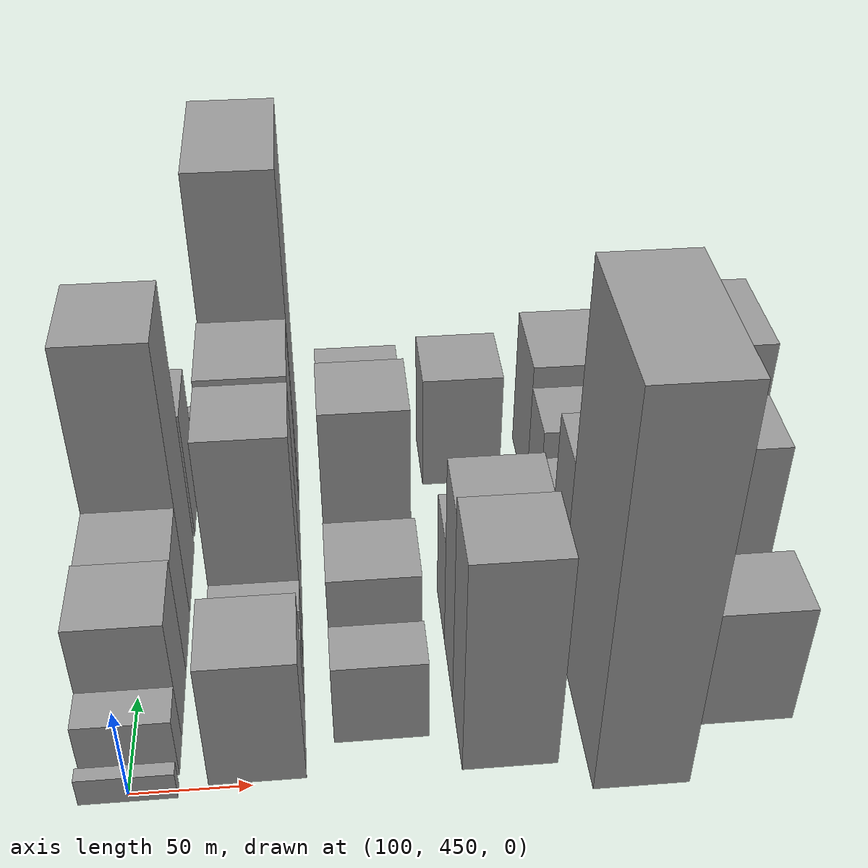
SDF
<sdf version="1.6">
 <world name="default">
  <model name="building_42">
   <static>1</static>
   <pose>100.0000 449.6973 0 0.000000 0.000000 0.000000</pose>
   <link name="link">
    <pose>0 0 7.50 0 0 0</pose>
    <collision name="collision"><geometry><box><size>40.0000 6.3976 15.0000</size></box></geometry></collision>
    <visual name="visual">
     <cast_shadows>0</cast_shadows>
     <geometry><box><size>40.0000 6.3976 15.0000</size></box></geometry>
     <material>
      <script>
       <uri>model://grey_wall/materials/scripts</uri>
       <uri>model://grey_wall/materials/textures</uri>
       <name>vrc/grey_wall</name>
      </script>
     </material>
    </visual>
   </link>
  </model>
  <model name="building_43">
   <static>1</static>
   <pose>100.0000 467.1115 0 0.000000 0.000000 0.000000</pose>
   <link name="link">
    <pose>0 0 16.50 0 0 0</pose>
    <collision name="collision"><geometry><box><size>40.0000 18.4309 33.0000</size></box></geometry></collision>
    <visual name="visual">
     <cast_shadows>0</cast_shadows>
     <geometry><box><size>40.0000 18.4309 33.0000</size></box></geometry>
     <material>
      <script>
       <uri>model://grey_wall/materials/scripts</uri>
       <uri>model://grey_wall/materials/textures</uri>
       <name>vrc/grey_wall</name>
      </script>
     </material>
    </visual>
   </link>
  </model>
  <model name="building_44">
   <static>1</static>
   <pose>100.0000 494.6663 0 0.000000 0.000000 0.000000</pose>
   <link name="link">
    <pose>0 0 34.50 0 0 0</pose>
    <collision name="collision"><geometry><box><size>40.0000 36.6787 69.0000</size></box></geometry></collision>
    <visual name="visual">
     <cast_shadows>0</cast_shadows>
     <geometry><box><size>40.0000 36.6787 69.0000</size></box></geometry>
     <material>
      <script>
       <uri>model://grey_wall/materials/scripts</uri>
       <uri>model://grey_wall/materials/textures</uri>
       <name>vrc/grey_wall</name>
      </script>
     </material>
    </visual>
   </link>
  </model>
  <model name="building_45">
   <static>1</static>
   <pose>100.0000 530.7949 0 0.000000 0.000000 0.000000</pose>
   <link name="link">
    <pose>0 0 33.00 0 0 0</pose>
    <collision name="collision"><geometry><box><size>40.0000 35.5785 66.0000</size></box></geometry></collision>
    <visual name="visual">
     <cast_shadows>0</cast_shadows>
     <geometry><box><size>40.0000 35.5785 66.0000</size></box></geometry>
     <material>
      <script>
       <uri>model://grey_wall/materials/scripts</uri>
       <uri>model://grey_wall/materials/textures</uri>
       <name>vrc/grey_wall</name>
      </script>
     </material>
    </visual>
   </link>
  </model>
  <model name="building_46">
   <static>1</static>
   <pose>100.0000 571.7592 0 0.000000 0.000000 0.000000</pose>
   <link name="link">
    <pose>0 0 76.50 0 0 0</pose>
    <collision name="collision"><geometry><box><size>40.0000 46.3501 153.0000</size></box></geometry></collision>
    <visual name="visual">
     <cast_shadows>0</cast_shadows>
     <geometry><box><size>40.0000 46.3501 153.0000</size></box></geometry>
     <material>
      <script>
       <uri>model://grey_wall/materials/scripts</uri>
       <uri>model://grey_wall/materials/textures</uri>
       <name>vrc/grey_wall</name>
      </script>
     </material>
    </visual>
   </link>
  </model>
  <model name="building_47">
   <static>1</static>
   <pose>100.0000 620.8621 0 0.000000 0.000000 0.000000</pose>
   <link name="link">
    <pose>0 0 37.50 0 0 0</pose>
    <collision name="collision"><geometry><box><size>40.0000 37.8558 75.0000</size></box></geometry></collision>
    <visual name="visual">
     <cast_shadows>0</cast_shadows>
     <geometry><box><size>40.0000 37.8558 75.0000</size></box></geometry>
     <material>
      <script>
       <uri>model://grey_wall/materials/scripts</uri>
       <uri>model://grey_wall/materials/textures</uri>
       <name>vrc/grey_wall</name>
      </script>
     </material>
    </visual>
   </link>
  </model>
  <model name="building_48">
   <static>1</static>
   <pose>100.0000 646.1864 0 0.000000 0.000000 0.000000</pose>
   <link name="link">
    <pose>0 0 13.50 0 0 0</pose>
    <collision name="collision"><geometry><box><size>40.0000 12.7928 27.0000</size></box></geometry></collision>
    <visual name="visual">
     <cast_shadows>0</cast_shadows>
     <geometry><box><size>40.0000 12.7928 27.0000</size></box></geometry>
     <material>
      <script>
       <uri>model://grey_wall/materials/scripts</uri>
       <uri>model://grey_wall/materials/textures</uri>
       <name>vrc/grey_wall</name>
      </script>
     </material>
    </visual>
   </link>
  </model>
  <model name="building_49">
   <static>1</static>
   <pose>100.0000 660.9601 0 0.000000 0.000000 0.000000</pose>
   <link name="link">
    <pose>0 0 7.50 0 0 0</pose>
    <collision name="collision"><geometry><box><size>40.0000 6.7546 15.0000</size></box></geometry></collision>
    <visual name="visual">
     <cast_shadows>0</cast_shadows>
     <geometry><box><size>40.0000 6.7546 15.0000</size></box></geometry>
     <material>
      <script>
       <uri>model://grey_wall/materials/scripts</uri>
       <uri>model://grey_wall/materials/textures</uri>
       <name>vrc/grey_wall</name>
      </script>
     </material>
    </visual>
   </link>
  </model>
  <model name="building_50">
   <static>1</static>
   <pose>100.0000 672.1434 0 0.000000 0.000000 0.000000</pose>
   <link name="link">
    <pose>0 0 12.00 0 0 0</pose>
    <collision name="collision"><geometry><box><size>40.0000 9.6119 24.0000</size></box></geometry></collision>
    <visual name="visual">
     <cast_shadows>0</cast_shadows>
     <geometry><box><size>40.0000 9.6119 24.0000</size></box></geometry>
     <material>
      <script>
       <uri>model://grey_wall/materials/scripts</uri>
       <uri>model://grey_wall/materials/textures</uri>
       <name>vrc/grey_wall</name>
      </script>
     </material>
    </visual>
   </link>
  </model>
  <model name="building_51">
   <static>1</static>
   <pose>100.0000 681.0545 0 0.000000 0.000000 0.000000</pose>
   <link name="link">
    <pose>0 0 9.00 0 0 0</pose>
    <collision name="collision"><geometry><box><size>40.0000 8.2103 18.0000</size></box></geometry></collision>
    <visual name="visual">
     <cast_shadows>0</cast_shadows>
     <geometry><box><size>40.0000 8.2103 18.0000</size></box></geometry>
     <material>
      <script>
       <uri>model://grey_wall/materials/scripts</uri>
       <uri>model://grey_wall/materials/textures</uri>
       <name>vrc/grey_wall</name>
      </script>
     </material>
    </visual>
   </link>
  </model>
  <model name="building_93">
   <static>1</static>
   <pose>152.0000 470.5676 0 0.000000 0.000000 0.000000</pose>
   <link name="link">
    <pose>0 0 34.50 0 0 0</pose>
    <collision name="collision"><geometry><box><size>40.0000 37.8502 69.0000</size></box></geometry></collision>
    <visual name="visual">
     <cast_shadows>0</cast_shadows>
     <geometry><box><size>40.0000 37.8502 69.0000</size></box></geometry>
     <material>
      <script>
       <uri>model://grey_wall/materials/scripts</uri>
       <uri>model://grey_wall/materials/textures</uri>
       <name>vrc/grey_wall</name>
      </script>
     </material>
    </visual>
   </link>
  </model>
  <model name="building_94">
   <static>1</static>
   <pose>152.0000 498.0877 0 0.000000 0.000000 0.000000</pose>
   <link name="link">
    <pose>0 0 15.00 0 0 0</pose>
    <collision name="collision"><geometry><box><size>40.0000 17.1900 30.0000</size></box></geometry></collision>
    <visual name="visual">
     <cast_shadows>0</cast_shadows>
     <geometry><box><size>40.0000 17.1900 30.0000</size></box></geometry>
     <material>
      <script>
       <uri>model://grey_wall/materials/scripts</uri>
       <uri>model://grey_wall/materials/textures</uri>
       <name>vrc/grey_wall</name>
      </script>
     </material>
    </visual>
   </link>
  </model>
  <model name="building_95">
   <static>1</static>
   <pose>152.0000 510.2926 0 0.000000 0.000000 0.000000</pose>
   <link name="link">
    <pose>0 0 7.50 0 0 0</pose>
    <collision name="collision"><geometry><box><size>40.0000 7.2199 15.0000</size></box></geometry></collision>
    <visual name="visual">
     <cast_shadows>0</cast_shadows>
     <geometry><box><size>40.0000 7.2199 15.0000</size></box></geometry>
     <material>
      <script>
       <uri>model://grey_wall/materials/scripts</uri>
       <uri>model://grey_wall/materials/textures</uri>
       <name>vrc/grey_wall</name>
      </script>
     </material>
    </visual>
   </link>
  </model>
  <model name="building_96">
   <static>1</static>
   <pose>152.0000 523.5009 0 0.000000 0.000000 0.000000</pose>
   <link name="link">
    <pose>0 0 16.50 0 0 0</pose>
    <collision name="collision"><geometry><box><size>40.0000 19.1967 33.0000</size></box></geometry></collision>
    <visual name="visual">
     <cast_shadows>0</cast_shadows>
     <geometry><box><size>40.0000 19.1967 33.0000</size></box></geometry>
     <material>
      <script>
       <uri>model://grey_wall/materials/scripts</uri>
       <uri>model://grey_wall/materials/textures</uri>
       <name>vrc/grey_wall</name>
      </script>
     </material>
    </visual>
   </link>
  </model>
  <model name="building_97">
   <static>1</static>
   <pose>152.0000 552.0997 0 0.000000 0.000000 0.000000</pose>
   <link name="link">
    <pose>0 0 57.00 0 0 0</pose>
    <collision name="collision"><geometry><box><size>40.0000 38.0009 114.0000</size></box></geometry></collision>
    <visual name="visual">
     <cast_shadows>0</cast_shadows>
     <geometry><box><size>40.0000 38.0009 114.0000</size></box></geometry>
     <material>
      <script>
       <uri>model://grey_wall/materials/scripts</uri>
       <uri>model://grey_wall/materials/textures</uri>
       <name>vrc/grey_wall</name>
      </script>
     </material>
    </visual>
   </link>
  </model>
  <model name="building_98">
   <static>1</static>
   <pose>152.0000 593.2633 0 0.000000 0.000000 0.000000</pose>
   <link name="link">
    <pose>0 0 58.50 0 0 0</pose>
    <collision name="collision"><geometry><box><size>40.0000 44.3261 117.0000</size></box></geometry></collision>
    <visual name="visual">
     <cast_shadows>0</cast_shadows>
     <geometry><box><size>40.0000 44.3261 117.0000</size></box></geometry>
     <material>
      <script>
       <uri>model://grey_wall/materials/scripts</uri>
       <uri>model://grey_wall/materials/textures</uri>
       <name>vrc/grey_wall</name>
      </script>
     </material>
    </visual>
   </link>
  </model>
  <model name="building_99">
   <static>1</static>
   <pose>152.0000 656.1138 0 0.000000 0.000000 0.000000</pose>
   <link name="link">
    <pose>0 0 94.50 0 0 0</pose>
    <collision name="collision"><geometry><box><size>40.0000 71.3750 189.0000</size></box></geometry></collision>
    <visual name="visual">
     <cast_shadows>0</cast_shadows>
     <geometry><box><size>40.0000 71.3750 189.0000</size></box></geometry>
     <material>
      <script>
       <uri>model://grey_wall/materials/scripts</uri>
       <uri>model://grey_wall/materials/textures</uri>
       <name>vrc/grey_wall</name>
      </script>
     </material>
    </visual>
   </link>
  </model>
  <model name="building_147">
   <static>1</static>
   <pose>204.0000 480.4305 0 0.000000 0.000000 0.000000</pose>
   <link name="link">
    <pose>0 0 22.50 0 0 0</pose>
    <collision name="collision"><geometry><box><size>40.0000 23.7335 45.0000</size></box></geometry></collision>
    <visual name="visual">
     <cast_shadows>0</cast_shadows>
     <geometry><box><size>40.0000 23.7335 45.0000</size></box></geometry>
     <material>
      <script>
       <uri>model://grey_wall/materials/scripts</uri>
       <uri>model://grey_wall/materials/textures</uri>
       <name>vrc/grey_wall</name>
      </script>
     </material>
    </visual>
   </link>
  </model>
  <model name="building_148">
   <static>1</static>
   <pose>204.0000 518.3191 0 0.000000 0.000000 0.000000</pose>
   <link name="link">
    <pose>0 0 31.50 0 0 0</pose>
    <collision name="collision"><geometry><box><size>40.0000 36.0438 63.0000</size></box></geometry></collision>
    <visual name="visual">
     <cast_shadows>0</cast_shadows>
     <geometry><box><size>40.0000 36.0438 63.0000</size></box></geometry>
     <material>
      <script>
       <uri>model://grey_wall/materials/scripts</uri>
       <uri>model://grey_wall/materials/textures</uri>
       <name>vrc/grey_wall</name>
      </script>
     </material>
    </visual>
   </link>
  </model>
  <model name="building_149">
   <static>1</static>
   <pose>204.0000 542.8291 0 0.000000 0.000000 0.000000</pose>
   <link name="link">
    <pose>0 0 13.50 0 0 0</pose>
    <collision name="collision"><geometry><box><size>40.0000 12.9760 27.0000</size></box></geometry></collision>
    <visual name="visual">
     <cast_shadows>0</cast_shadows>
     <geometry><box><size>40.0000 12.9760 27.0000</size></box></geometry>
     <material>
      <script>
       <uri>model://grey_wall/materials/scripts</uri>
       <uri>model://grey_wall/materials/textures</uri>
       <name>vrc/grey_wall</name>
      </script>
     </material>
    </visual>
   </link>
  </model>
  <model name="building_150">
   <static>1</static>
   <pose>204.0000 577.4497 0 0.000000 0.000000 0.000000</pose>
   <link name="link">
    <pose>0 0 52.50 0 0 0</pose>
    <collision name="collision"><geometry><box><size>40.0000 38.2652 105.0000</size></box></geometry></collision>
    <visual name="visual">
     <cast_shadows>0</cast_shadows>
     <geometry><box><size>40.0000 38.2652 105.0000</size></box></geometry>
     <material>
      <script>
       <uri>model://grey_wall/materials/scripts</uri>
       <uri>model://grey_wall/materials/textures</uri>
       <name>vrc/grey_wall</name>
      </script>
     </material>
    </visual>
   </link>
  </model>
  <model name="building_151">
   <static>1</static>
   <pose>204.0000 628.6754 0 0.000000 0.000000 0.000000</pose>
   <link name="link">
    <pose>0 0 37.50 0 0 0</pose>
    <collision name="collision"><geometry><box><size>40.0000 44.1863 75.0000</size></box></geometry></collision>
    <visual name="visual">
     <cast_shadows>0</cast_shadows>
     <geometry><box><size>40.0000 44.1863 75.0000</size></box></geometry>
     <material>
      <script>
       <uri>model://grey_wall/materials/scripts</uri>
       <uri>model://grey_wall/materials/textures</uri>
       <name>vrc/grey_wall</name>
      </script>
     </material>
    </visual>
   </link>
  </model>
  <model name="building_152">
   <static>1</static>
   <pose>204.0000 664.7332 0 0.000000 0.000000 0.000000</pose>
   <link name="link">
    <pose>0 0 25.50 0 0 0</pose>
    <collision name="collision"><geometry><box><size>40.0000 27.9291 51.0000</size></box></geometry></collision>
    <visual name="visual">
     <cast_shadows>0</cast_shadows>
     <geometry><box><size>40.0000 27.9291 51.0000</size></box></geometry>
     <material>
      <script>
       <uri>model://grey_wall/materials/scripts</uri>
       <uri>model://grey_wall/materials/textures</uri>
       <name>vrc/grey_wall</name>
      </script>
     </material>
    </visual>
   </link>
  </model>
  <model name="building_201">
   <static>1</static>
   <pose>256.0000 468.4671 0 0.000000 0.000000 0.000000</pose>
   <link name="link">
    <pose>0 0 58.50 0 0 0</pose>
    <collision name="collision"><geometry><box><size>40.0000 36.9778 117.0000</size></box></geometry></collision>
    <visual name="visual">
     <cast_shadows>0</cast_shadows>
     <geometry><box><size>40.0000 36.9778 117.0000</size></box></geometry>
     <material>
      <script>
       <uri>model://grey_wall/materials/scripts</uri>
       <uri>model://grey_wall/materials/textures</uri>
       <name>vrc/grey_wall</name>
      </script>
     </material>
    </visual>
   </link>
  </model>
  <model name="building_202">
   <static>1</static>
   <pose>256.0000 504.1878 0 0.000000 0.000000 0.000000</pose>
   <link name="link">
    <pose>0 0 54.00 0 0 0</pose>
    <collision name="collision"><geometry><box><size>40.0000 34.4636 108.0000</size></box></geometry></collision>
    <visual name="visual">
     <cast_shadows>0</cast_shadows>
     <geometry><box><size>40.0000 34.4636 108.0000</size></box></geometry>
     <material>
      <script>
       <uri>model://grey_wall/materials/scripts</uri>
       <uri>model://grey_wall/materials/textures</uri>
       <name>vrc/grey_wall</name>
      </script>
     </material>
    </visual>
   </link>
  </model>
  <model name="building_203">
   <static>1</static>
   <pose>256.0000 537.7209 0 0.000000 0.000000 0.000000</pose>
   <link name="link">
    <pose>0 0 30.00 0 0 0</pose>
    <collision name="collision"><geometry><box><size>40.0000 32.6027 60.0000</size></box></geometry></collision>
    <visual name="visual">
     <cast_shadows>0</cast_shadows>
     <geometry><box><size>40.0000 32.6027 60.0000</size></box></geometry>
     <material>
      <script>
       <uri>model://grey_wall/materials/scripts</uri>
       <uri>model://grey_wall/materials/textures</uri>
       <name>vrc/grey_wall</name>
      </script>
     </material>
    </visual>
   </link>
  </model>
  <model name="building_204">
   <static>1</static>
   <pose>256.0000 650.5957 0 0.000000 0.000000 0.000000</pose>
   <link name="link">
    <pose>0 0 33.00 0 0 0</pose>
    <collision name="collision"><geometry><box><size>40.0000 39.0490 66.0000</size></box></geometry></collision>
    <visual name="visual">
     <cast_shadows>0</cast_shadows>
     <geometry><box><size>40.0000 39.0490 66.0000</size></box></geometry>
     <material>
      <script>
       <uri>model://grey_wall/materials/scripts</uri>
       <uri>model://grey_wall/materials/textures</uri>
       <name>vrc/grey_wall</name>
      </script>
     </material>
    </visual>
   </link>
  </model>
  <model name="building_242">
   <static>1</static>
   <pose>308.0000 476.3294 0 0.000000 0.000000 0.000000</pose>
   <link name="link">
    <pose>0 0 102.00 0 0 0</pose>
    <collision name="collision"><geometry><box><size>40.0000 81.0911 204.0000</size></box></geometry></collision>
    <visual name="visual">
     <cast_shadows>0</cast_shadows>
     <geometry><box><size>40.0000 81.0911 204.0000</size></box></geometry>
     <material>
      <script>
       <uri>model://grey_wall/materials/scripts</uri>
       <uri>model://grey_wall/materials/textures</uri>
       <name>vrc/grey_wall</name>
      </script>
     </material>
    </visual>
   </link>
  </model>
  <model name="building_243">
   <static>1</static>
   <pose>308.0000 533.5579 0 0.000000 0.000000 0.000000</pose>
   <link name="link">
    <pose>0 0 52.50 0 0 0</pose>
    <collision name="collision"><geometry><box><size>40.0000 33.3659 105.0000</size></box></geometry></collision>
    <visual name="visual">
     <cast_shadows>0</cast_shadows>
     <geometry><box><size>40.0000 33.3659 105.0000</size></box></geometry>
     <material>
      <script>
       <uri>model://grey_wall/materials/scripts</uri>
       <uri>model://grey_wall/materials/textures</uri>
       <name>vrc/grey_wall</name>
      </script>
     </material>
    </visual>
   </link>
  </model>
  <model name="building_244">
   <static>1</static>
   <pose>308.0000 566.1924 0 0.000000 0.000000 0.000000</pose>
   <link name="link">
    <pose>0 0 27.00 0 0 0</pose>
    <collision name="collision"><geometry><box><size>40.0000 31.9032 54.0000</size></box></geometry></collision>
    <visual name="visual">
     <cast_shadows>0</cast_shadows>
     <geometry><box><size>40.0000 31.9032 54.0000</size></box></geometry>
     <material>
      <script>
       <uri>model://grey_wall/materials/scripts</uri>
       <uri>model://grey_wall/materials/textures</uri>
       <name>vrc/grey_wall</name>
      </script>
     </material>
    </visual>
   </link>
  </model>
  <model name="building_245">
   <static>1</static>
   <pose>308.0000 599.6286 0 0.000000 0.000000 0.000000</pose>
   <link name="link">
    <pose>0 0 34.50 0 0 0</pose>
    <collision name="collision"><geometry><box><size>40.0000 34.9690 69.0000</size></box></geometry></collision>
    <visual name="visual">
     <cast_shadows>0</cast_shadows>
     <geometry><box><size>40.0000 34.9690 69.0000</size></box></geometry>
     <material>
      <script>
       <uri>model://grey_wall/materials/scripts</uri>
       <uri>model://grey_wall/materials/textures</uri>
       <name>vrc/grey_wall</name>
      </script>
     </material>
    </visual>
   </link>
  </model>
  <model name="building_246">
   <static>1</static>
   <pose>308.0000 641.1696 0 0.000000 0.000000 0.000000</pose>
   <link name="link">
    <pose>0 0 40.50 0 0 0</pose>
    <collision name="collision"><geometry><box><size>40.0000 48.1130 81.0000</size></box></geometry></collision>
    <visual name="visual">
     <cast_shadows>0</cast_shadows>
     <geometry><box><size>40.0000 48.1130 81.0000</size></box></geometry>
     <material>
      <script>
       <uri>model://grey_wall/materials/scripts</uri>
       <uri>model://grey_wall/materials/textures</uri>
       <name>vrc/grey_wall</name>
      </script>
     </material>
    </visual>
   </link>
  </model>
  <model name="building_291">
   <static>1</static>
   <pose>360.0000 481.4810 0 0.000000 0.000000 0.000000</pose>
   <link name="link">
    <pose>0 0 33.00 0 0 0</pose>
    <collision name="collision"><geometry><box><size>40.0000 34.2338 66.0000</size></box></geometry></collision>
    <visual name="visual">
     <cast_shadows>0</cast_shadows>
     <geometry><box><size>40.0000 34.2338 66.0000</size></box></geometry>
     <material>
      <script>
       <uri>model://grey_wall/materials/scripts</uri>
       <uri>model://grey_wall/materials/textures</uri>
       <name>vrc/grey_wall</name>
      </script>
     </material>
    </visual>
   </link>
  </model>
  <model name="building_292">
   <static>1</static>
   <pose>360.0000 508.8552 0 0.000000 0.000000 0.000000</pose>
   <link name="link">
    <pose>0 0 19.50 0 0 0</pose>
    <collision name="collision"><geometry><box><size>40.0000 20.5146 39.0000</size></box></geometry></collision>
    <visual name="visual">
     <cast_shadows>0</cast_shadows>
     <geometry><box><size>40.0000 20.5146 39.0000</size></box></geometry>
     <material>
      <script>
       <uri>model://grey_wall/materials/scripts</uri>
       <uri>model://grey_wall/materials/textures</uri>
       <name>vrc/grey_wall</name>
      </script>
     </material>
    </visual>
   </link>
  </model>
  <model name="building_293">
   <static>1</static>
   <pose>360.0000 537.0481 0 0.000000 0.000000 0.000000</pose>
   <link name="link">
    <pose>0 0 52.50 0 0 0</pose>
    <collision name="collision"><geometry><box><size>40.0000 35.8713 105.0000</size></box></geometry></collision>
    <visual name="visual">
     <cast_shadows>0</cast_shadows>
     <geometry><box><size>40.0000 35.8713 105.0000</size></box></geometry>
     <material>
      <script>
       <uri>model://grey_wall/materials/scripts</uri>
       <uri>model://grey_wall/materials/textures</uri>
       <name>vrc/grey_wall</name>
      </script>
     </material>
    </visual>
   </link>
  </model>
  <model name="building_294">
   <static>1</static>
   <pose>360.0000 580.9445 0 0.000000 0.000000 0.000000</pose>
   <link name="link">
    <pose>0 0 66.00 0 0 0</pose>
    <collision name="collision"><geometry><box><size>40.0000 51.9213 132.0000</size></box></geometry></collision>
    <visual name="visual">
     <cast_shadows>0</cast_shadows>
     <geometry><box><size>40.0000 51.9213 132.0000</size></box></geometry>
     <material>
      <script>
       <uri>model://grey_wall/materials/scripts</uri>
       <uri>model://grey_wall/materials/textures</uri>
       <name>vrc/grey_wall</name>
      </script>
     </material>
    </visual>
   </link>
  </model>
  <model name="building_295">
   <static>1</static>
   <pose>360.0000 626.0344 0 0.000000 0.000000 0.000000</pose>
   <link name="link">
    <pose>0 0 33.00 0 0 0</pose>
    <collision name="collision"><geometry><box><size>40.0000 38.2586 66.0000</size></box></geometry></collision>
    <visual name="visual">
     <cast_shadows>0</cast_shadows>
     <geometry><box><size>40.0000 38.2586 66.0000</size></box></geometry>
     <material>
      <script>
       <uri>model://grey_wall/materials/scripts</uri>
       <uri>model://grey_wall/materials/textures</uri>
       <name>vrc/grey_wall</name>
      </script>
     </material>
    </visual>
   </link>
  </model>
  <model name="building_296">
   <static>1</static>
   <pose>360.0000 658.6214 0 0.000000 0.000000 0.000000</pose>
   <link name="link">
    <pose>0 0 22.50 0 0 0</pose>
    <collision name="collision"><geometry><box><size>40.0000 26.9154 45.0000</size></box></geometry></collision>
    <visual name="visual">
     <cast_shadows>0</cast_shadows>
     <geometry><box><size>40.0000 26.9154 45.0000</size></box></geometry>
     <material>
      <script>
       <uri>model://grey_wall/materials/scripts</uri>
       <uri>model://grey_wall/materials/textures</uri>
       <name>vrc/grey_wall</name>
      </script>
     </material>
    </visual>
   </link>
  </model>
 </world>
</sdf>
